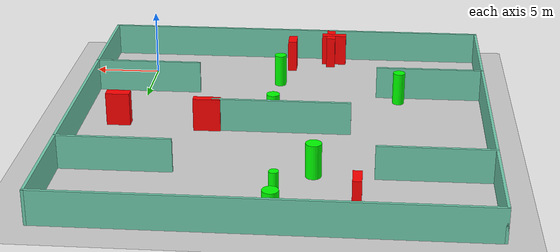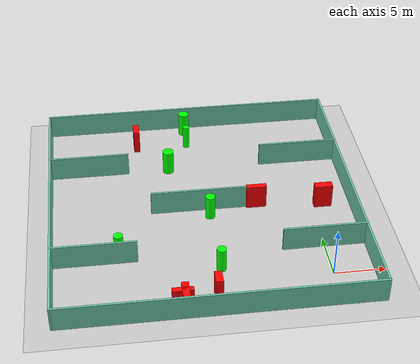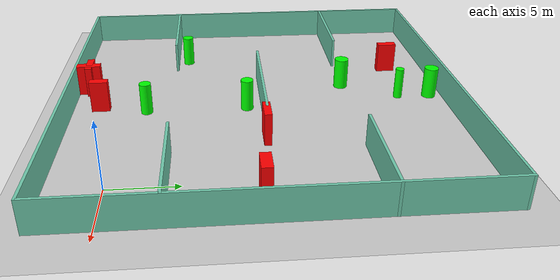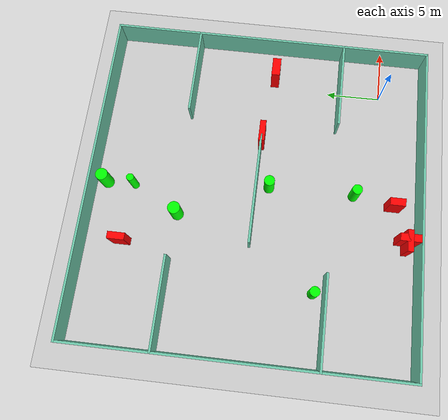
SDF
<sdf version="1.7">
 <world name="default">
  <light name="sun" type="directional">
   <pose>0 0 10 0 -0 0</pose>
   <diffuse>0.8 0.8 0.8 1</diffuse>
   <specular>0.2 0.2 0.2 1</specular>
   <attenuation>
    <range>1000</range>
    <constant>0.9</constant>
    <linear>0.01</linear>
    <quadratic>0.001</quadratic>
   </attenuation>
   <direction>-0.5 0.1 -0.9</direction>
   <spot><inner_angle>0</inner_angle><outer_angle>0</outer_angle><falloff>0</falloff></spot>
  </light>
  <model name="ground_plane">
   <static>1</static>
   <link name="link">
    <collision name="collision">
     <geometry><plane><normal>0 0 1</normal><size>100 100</size></plane></geometry>
     <surface>
      <contact><collide_bitmask>65535</collide_bitmask></contact>
      <friction><ode><mu>100</mu><mu2>50</mu2></ode></friction>
     </surface>
    </collision>
    <visual name="visual">
     <cast_shadows>0</cast_shadows>
     <geometry><plane><normal>0 0 1</normal><size>100 100</size></plane></geometry>
     <material>
      <script><uri>file://media/materials/scripts/gazebo.material</uri><name>Gazebo/Grey</name></script>
     </material>
    </visual>
   </link>
  </model>
  <gravity>0 0 -9.8</gravity>
  <magnetic_field>6e-06 2.3e-05 -4.2e-05</magnetic_field>
  <atmosphere type="adiabatic"/>
  <physics type="ode">
   <max_step_size>0.001</max_step_size>
   <real_time_factor>1</real_time_factor>
   <real_time_update_rate>1000</real_time_update_rate>
  </physics>
  <scene><ambient>0.4 0.4 0.4 1</ambient><background>0.7 0.7 0.7 1</background><shadows>1</shadows></scene>
  <spherical_coordinates>
   <surface_model>EARTH_WGS84</surface_model>
   <latitude_deg>0</latitude_deg>
   <longitude_deg>0</longitude_deg>
   <elevation>0</elevation>
   <heading_deg>0</heading_deg>
  </spherical_coordinates>
  <model name="my_base_walls">
   <link name="Wall_10">
    <collision name="Wall_10_Collision">
     <geometry><box><size>8.2 0.2 2.5</size></box></geometry>
     <pose>0 0 1.25 0 -0 0</pose>
    </collision>
    <visual name="Wall_10_Visual">
     <pose>0 0 1.25 0 -0 0</pose>
     <geometry><box><size>8.2 0.2 2.5</size></box></geometry>
     <material>
      <script><uri>file://media/materials/scripts/gazebo.material</uri><name>Gazebo/Grey</name></script>
      <ambient>0.435294 0.796078 0.67451 1</ambient>
     </material>
     <meta><layer>0</layer></meta>
    </visual>
    <pose>-11 -7 0 0 -0 0</pose>
   </link>
   <link name="Wall_12">
    <collision name="Wall_12_Collision">
     <geometry><box><size>8.2 0.2 2.5</size></box></geometry>
     <pose>0 0 1.25 0 -0 0</pose>
    </collision>
    <visual name="Wall_12_Visual">
     <pose>0 0 1.25 0 -0 0</pose>
     <geometry><box><size>8.2 0.2 2.5</size></box></geometry>
     <material>
      <script><uri>file://media/materials/scripts/gazebo.material</uri><name>Gazebo/Grey</name></script>
      <ambient>0.435294 0.796078 0.67451 1</ambient>
     </material>
     <meta><layer>0</layer></meta>
    </visual>
    <pose>-11 7 0 0 -0 0</pose>
   </link>
   <link name="Wall_14">
    <collision name="Wall_14_Collision">
     <geometry><box><size>8.2 0.2 2.5</size></box></geometry>
     <pose>0 0 1.25 0 -0 0</pose>
    </collision>
    <visual name="Wall_14_Visual">
     <pose>0 0 1.25 0 -0 0</pose>
     <geometry><box><size>8.2 0.2 2.5</size></box></geometry>
     <material>
      <script><uri>file://media/materials/scripts/gazebo.material</uri><name>Gazebo/Grey</name></script>
      <ambient>0.435294 0.796078 0.67451 1</ambient>
     </material>
     <meta><layer>0</layer></meta>
    </visual>
    <pose>11 7 0 0 -0 3.14159</pose>
   </link>
   <link name="Wall_16">
    <collision name="Wall_16_Collision">
     <geometry><box><size>10.2 0.2 2.5</size></box></geometry>
     <pose>0 0 1.25 0 -0 0</pose>
    </collision>
    <visual name="Wall_16_Visual">
     <pose>0 0 1.25 0 -0 0</pose>
     <geometry><box><size>10.2 0.2 2.5</size></box></geometry>
     <material>
      <script><uri>file://media/materials/scripts/gazebo.material</uri><name>Gazebo/Grey</name></script>
      <ambient>0.435294 0.796078 0.67451 1</ambient>
     </material>
     <meta><layer>0</layer></meta>
    </visual>
    <pose>0 0 0 0 -0 3.14159</pose>
   </link>
   <link name="Wall_2">
    <collision name="Wall_2_Collision">
     <geometry><box><size>30.2 0.2 2.5</size></box></geometry>
     <pose>0 0 1.25 0 -0 0</pose>
    </collision>
    <visual name="Wall_2_Visual">
     <pose>0 0 1.25 0 -0 0</pose>
     <geometry><box><size>30.2 0.2 2.5</size></box></geometry>
     <material>
      <script><uri>file://media/materials/scripts/gazebo.material</uri><name>Gazebo/Grey</name></script>
      <ambient>0.435294 0.796078 0.67451 1</ambient>
     </material>
     <meta><layer>0</layer></meta>
    </visual>
    <pose>0 -15 0 0 -0 3.14159</pose>
   </link>
   <link name="Wall_3">
    <collision name="Wall_3_Collision">
     <geometry><box><size>30.2 0.2 2.5</size></box></geometry>
     <pose>0 0 1.25 0 -0 0</pose>
    </collision>
    <visual name="Wall_3_Visual">
     <pose>0 0 1.25 0 -0 0</pose>
     <geometry><box><size>30.2 0.2 2.5</size></box></geometry>
     <material>
      <script><uri>file://media/materials/scripts/gazebo.material</uri><name>Gazebo/Grey</name></script>
      <ambient>0.435294 0.796078 0.67451 1</ambient>
     </material>
     <meta><layer>0</layer></meta>
    </visual>
    <pose>-15 0 0 0 -0 1.5708</pose>
   </link>
   <link name="Wall_4">
    <collision name="Wall_4_Collision">
     <geometry><box><size>30.2 0.2 2.5</size></box></geometry>
     <pose>0 0 1.25 0 -0 0</pose>
    </collision>
    <visual name="Wall_4_Visual">
     <pose>0 0 1.25 0 -0 0</pose>
     <geometry><box><size>30.2 0.2 2.5</size></box></geometry>
     <material>
      <script><uri>file://media/materials/scripts/gazebo.material</uri><name>Gazebo/Grey</name></script>
      <ambient>0.435294 0.796078 0.67451 1</ambient>
     </material>
     <meta><layer>0</layer></meta>
    </visual>
    <pose>0 15 0 0 -0 0</pose>
   </link>
   <link name="Wall_6">
    <collision name="Wall_6_Collision">
     <geometry><box><size>30.2 0.2 2.5</size></box></geometry>
     <pose>0 0 1.25 0 -0 0</pose>
    </collision>
    <visual name="Wall_6_Visual">
     <pose>0 0 1.25 0 -0 0</pose>
     <geometry><box><size>30.2 0.2 2.5</size></box></geometry>
     <material>
      <script><uri>file://media/materials/scripts/gazebo.material</uri><name>Gazebo/Grey</name></script>
      <ambient>0.435294 0.796078 0.67451 1</ambient>
     </material>
     <meta><layer>0</layer></meta>
    </visual>
    <pose>15 0 0 0 -0 1.5708</pose>
   </link>
   <link name="Wall_8">
    <collision name="Wall_8_Collision">
     <geometry><box><size>8.2 0.2 2.5</size></box></geometry>
     <pose>0 0 1.25 0 -0 0</pose>
    </collision>
    <visual name="Wall_8_Visual">
     <pose>0 0 1.25 0 -0 0</pose>
     <geometry><box><size>8.2 0.2 2.5</size></box></geometry>
     <material>
      <script><uri>file://media/materials/scripts/gazebo.material</uri><name>Gazebo/Grey</name></script>
      <ambient>0.435294 0.796078 0.67451 1</ambient>
     </material>
     <meta><layer>0</layer></meta>
    </visual>
    <pose>11 -7 0 0 -0 3.14159</pose>
   </link>
   <static>1</static>
   <pose>-11 11 0 0 -0 0</pose>
  </model>
  <model name="cylinder1">
   <static>1</static>
   <link name="link">
    <inertial>
     <mass>1</mass>
     <inertia><ixx>0.5</ixx><ixy>0</ixy><ixz>0</ixz><iyy>0.5</iyy><iyz>0</iyz><izz>1</izz></inertia>
    </inertial>
    <collision name="collision">
     <geometry><cylinder><radius>0.48171444675760644</radius><length>2.5</length></cylinder></geometry>
    </collision>
    <visual name="visual">
     <geometry><cylinder><radius>0.48171444675760644</radius><length>2.5</length></cylinder></geometry>
     <material>
      <ambient>0 1 0 1</ambient>
      <diffuse>0 1 0 1</diffuse>
      <specular>0.1 0.1 0.1 1</specular>
      <emissive>0 0 0 0</emissive>
     </material>
    </visual>
   </link>
   <pose>-10.31202655920541 9.788874950494694 1.25 0 0 0</pose>
  </model>
  <model name="cylinder2">
   <static>1</static>
   <link name="link">
    <inertial>
     <mass>1</mass>
     <inertia><ixx>0.5</ixx><ixy>0</ixy><ixz>0</ixz><iyy>0.5</iyy><iyz>0</iyz><izz>1</izz></inertia>
    </inertial>
    <collision name="collision">
     <geometry><cylinder><radius>0.45023402087141917</radius><length>2.5</length></cylinder></geometry>
    </collision>
    <visual name="visual">
     <geometry><cylinder><radius>0.45023402087141917</radius><length>2.5</length></cylinder></geometry>
     <material>
      <ambient>0 1 0 1</ambient>
      <diffuse>0 1 0 1</diffuse>
      <specular>0.1 0.1 0.1 1</specular>
      <emissive>0 0 0 0</emissive>
     </material>
    </visual>
   </link>
   <pose>-19.622140173900135 4.972358309343036 1.25 0 0 0</pose>
  </model>
  <model name="cylinder3">
   <static>1</static>
   <link name="link">
    <inertial>
     <mass>1</mass>
     <inertia><ixx>0.5</ixx><ixy>0</ixy><ixz>0</ixz><iyy>0.5</iyy><iyz>0</iyz><izz>1</izz></inertia>
    </inertial>
    <collision name="collision">
     <geometry><cylinder><radius>0.3379297688756766</radius><length>2.5</length></cylinder></geometry>
    </collision>
    <visual name="visual">
     <geometry><cylinder><radius>0.3379297688756766</radius><length>2.5</length></cylinder></geometry>
     <material>
      <ambient>0 1 0 1</ambient>
      <diffuse>0 1 0 1</diffuse>
      <specular>0.1 0.1 0.1 1</specular>
      <emissive>0 0 0 0</emissive>
     </material>
    </visual>
   </link>
   <pose>-11.393653947899352 22.255238048409154 1.25 0 0 0</pose>
  </model>
  <model name="cylinder4">
   <static>1</static>
   <link name="link">
    <inertial>
     <mass>1</mass>
     <inertia><ixx>0.5</ixx><ixy>0</ixy><ixz>0</ixz><iyy>0.5</iyy><iyz>0</iyz><izz>1</izz></inertia>
    </inertial>
    <collision name="collision">
     <geometry><cylinder><radius>0.5625729231717862</radius><length>2.5</length></cylinder></geometry>
    </collision>
    <visual name="visual">
     <geometry><cylinder><radius>0.5625729231717862</radius><length>2.5</length></cylinder></geometry>
     <material>
      <ambient>0 1 0 1</ambient>
      <diffuse>0 1 0 1</diffuse>
      <specular>0.1 0.1 0.1 1</specular>
      <emissive>0 0 0 0</emissive>
     </material>
    </visual>
   </link>
   <pose>-13.739214287103906 17.926245949924166 1.25 0 0 0</pose>
  </model>
  <model name="cylinder5">
   <static>1</static>
   <link name="link">
    <inertial>
     <mass>1</mass>
     <inertia><ixx>0.5</ixx><ixy>0</ixy><ixz>0</ixz><iyy>0.5</iyy><iyz>0</iyz><izz>1</izz></inertia>
    </inertial>
    <collision name="collision">
     <geometry><cylinder><radius>0.4564194970248996</radius><length>2.5</length></cylinder></geometry>
    </collision>
    <visual name="visual">
     <geometry><cylinder><radius>0.4564194970248996</radius><length>2.5</length></cylinder></geometry>
     <material>
      <ambient>0 1 0 1</ambient>
      <diffuse>0 1 0 1</diffuse>
      <specular>0.1 0.1 0.1 1</specular>
      <emissive>0 0 0 0</emissive>
     </material>
    </visual>
   </link>
   <pose>-10.262285593995152 1.9088040831367907 1.25 0 0 0</pose>
  </model>
  <model name="cylinder6">
   <static>1</static>
   <link name="link">
    <inertial>
     <mass>1</mass>
     <inertia><ixx>0.5</ixx><ixy>0</ixy><ixz>0</ixz><iyy>0.5</iyy><iyz>0</iyz><izz>1</izz></inertia>
    </inertial>
    <collision name="collision">
     <geometry><cylinder><radius>0.5522900607713059</radius><length>2.5</length></cylinder></geometry>
    </collision>
    <visual name="visual">
     <geometry><cylinder><radius>0.5522900607713059</radius><length>2.5</length></cylinder></geometry>
     <material>
      <ambient>0 1 0 1</ambient>
      <diffuse>0 1 0 1</diffuse>
      <specular>0.1 0.1 0.1 1</specular>
      <emissive>0 0 0 0</emissive>
     </material>
    </visual>
   </link>
   <pose>-11.395268273713604 24.863267280260022 1.25 0 0 0</pose>
  </model>
  <model name="box1">
   <static>1</static>
   <link name="link">
    <inertial>
     <mass>1</mass>
     <inertia><ixx>0.083</ixx><ixy>0</ixy><ixz>0</ixz><iyy>0.083</iyy><iyz>0</iyz><izz>0.083</izz></inertia>
    </inertial>
    <collision name="collision">
     <geometry><box><size>0.68265070936309 1.3994694858817114 2.5</size></box></geometry>
    </collision>
    <visual name="visual">
     <geometry><box><size>0.68265070936309 1.3994694858817114 2.5</size></box></geometry>
     <material>
      <ambient>1 0 0 1</ambient>
      <diffuse>1 0 0 1</diffuse>
      <specular>0.1 0.1 0.1 1</specular>
      <emissive>0 0 0 0</emissive>
     </material>
    </visual>
    <sensor name="my_contact" type="contact">
     <contact><collision>box_collision</collision><topic>__default_topic__</topic></contact>
    </sensor>
   </link>
   <pose>-11.003128823719626 -1.7239621158679936 1.25 0 0 0</pose>
  </model>
  <model name="box2">
   <static>1</static>
   <link name="link">
    <inertial>
     <mass>1</mass>
     <inertia><ixx>0.083</ixx><ixy>0</ixy><ixz>0</ixz><iyy>0.083</iyy><iyz>0</iyz><izz>0.083</izz></inertia>
    </inertial>
    <collision name="collision">
     <geometry><box><size>0.6264855278998557 1.534558225002561 2.5</size></box></geometry>
    </collision>
    <visual name="visual">
     <geometry><box><size>0.6264855278998557 1.534558225002561 2.5</size></box></geometry>
     <material>
      <ambient>1 0 0 1</ambient>
      <diffuse>1 0 0 1</diffuse>
      <specular>0.1 0.1 0.1 1</specular>
      <emissive>0 0 0 0</emissive>
     </material>
    </visual>
    <sensor name="my_contact" type="contact">
     <contact><collision>box_collision</collision><topic>__default_topic__</topic></contact>
    </sensor>
   </link>
   <pose>-16.77535980583531 22.534651516367 1.25 0 0 0</pose>
  </model>
  <model name="box3">
   <static>1</static>
   <link name="link">
    <inertial>
     <mass>1</mass>
     <inertia><ixx>0.083</ixx><ixy>0</ixy><ixz>0</ixz><iyy>0.083</iyy><iyz>0</iyz><izz>0.083</izz></inertia>
    </inertial>
    <collision name="collision">
     <geometry><box><size>0.6777930783148503 1.882285340178206 2.5</size></box></geometry>
    </collision>
    <visual name="visual">
     <geometry><box><size>0.6777930783148503 1.882285340178206 2.5</size></box></geometry>
     <material>
      <ambient>1 0 0 1</ambient>
      <diffuse>1 0 0 1</diffuse>
      <specular>0.1 0.1 0.1 1</specular>
      <emissive>0 0 0 0</emissive>
     </material>
    </visual>
    <sensor name="my_contact" type="contact">
     <contact><collision>box_collision</collision><topic>__default_topic__</topic></contact>
    </sensor>
   </link>
   <pose>-14.094737599934271 -2.9782919676970883 1.25 0 0 0</pose>
  </model>
  <model name="box4">
   <static>1</static>
   <link name="link">
    <inertial>
     <mass>1</mass>
     <inertia><ixx>0.083</ixx><ixy>0</ixy><ixz>0</ixz><iyy>0.083</iyy><iyz>0</iyz><izz>0.083</izz></inertia>
    </inertial>
    <collision name="collision">
     <geometry><box><size>1.9499668357129354 0.5239712284071135 2.5</size></box></geometry>
    </collision>
    <visual name="visual">
     <geometry><box><size>1.9499668357129354 0.5239712284071135 2.5</size></box></geometry>
     <material>
      <ambient>1 0 0 1</ambient>
      <diffuse>1 0 0 1</diffuse>
      <specular>0.1 0.1 0.1 1</specular>
      <emissive>0 0 0 0</emissive>
     </material>
    </visual>
    <sensor name="my_contact" type="contact">
     <contact><collision>box_collision</collision><topic>__default_topic__</topic></contact>
    </sensor>
   </link>
   <pose>-14.346056783347233 -2.935981231643008 1.25 0 0 0</pose>
  </model>
  <model name="box5">
   <static>1</static>
   <link name="link">
    <inertial>
     <mass>1</mass>
     <inertia><ixx>0.083</ixx><ixy>0</ixy><ixz>0</ixz><iyy>0.083</iyy><iyz>0</iyz><izz>0.083</izz></inertia>
    </inertial>
    <collision name="collision">
     <geometry><box><size>1.7674709664610744 0.7839163768273512 2.5</size></box></geometry>
    </collision>
    <visual name="visual">
     <geometry><box><size>1.7674709664610744 0.7839163768273512 2.5</size></box></geometry>
     <material>
      <ambient>1 0 0 1</ambient>
      <diffuse>1 0 0 1</diffuse>
      <specular>0.1 0.1 0.1 1</specular>
      <emissive>0 0 0 0</emissive>
     </material>
    </visual>
    <sensor name="my_contact" type="contact">
     <contact><collision>box_collision</collision><topic>__default_topic__</topic></contact>
    </sensor>
   </link>
   <pose>1.1423728361478425 10.313328305423266 1.25 0 0 0</pose>
  </model>
  <model name="box6">
   <static>1</static>
   <link name="link">
    <inertial>
     <mass>1</mass>
     <inertia><ixx>0.083</ixx><ixy>0</ixy><ixz>0</ixz><iyy>0.083</iyy><iyz>0</iyz><izz>0.083</izz></inertia>
    </inertial>
    <collision name="collision">
     <geometry><box><size>2.0102358690246565 0.5545417938269138 2.5</size></box></geometry>
    </collision>
    <visual name="visual">
     <geometry><box><size>2.0102358690246565 0.5545417938269138 2.5</size></box></geometry>
     <material>
      <ambient>1 0 0 1</ambient>
      <diffuse>1 0 0 1</diffuse>
      <specular>0.1 0.1 0.1 1</specular>
      <emissive>0 0 0 0</emissive>
     </material>
    </visual>
    <sensor name="my_contact" type="contact">
     <contact><collision>box_collision</collision><topic>__default_topic__</topic></contact>
    </sensor>
   </link>
   <pose>-5.546320136277277 10.954893122286876 1.25 0 0 0</pose>
  </model>
 </world>
</sdf>
